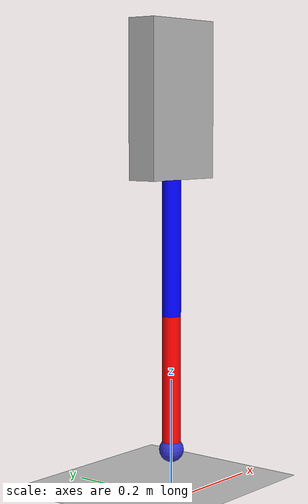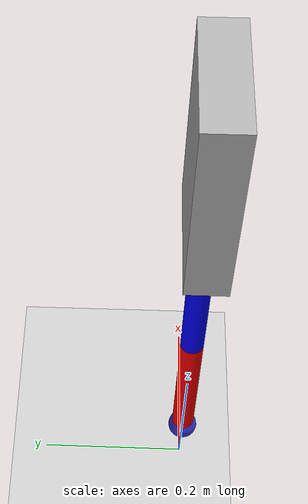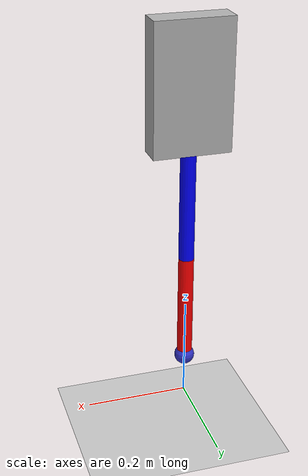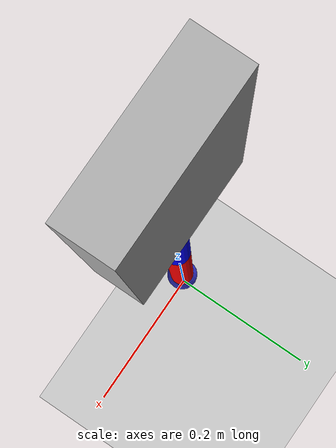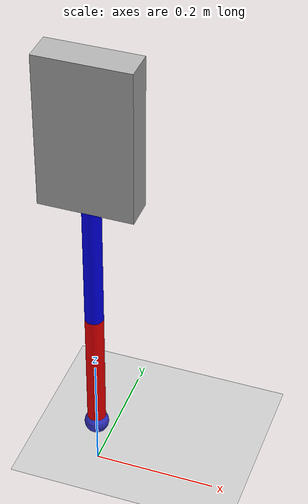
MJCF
<?xml version="1.0"?>
<mujoco model="biped_robot">
  <option timestep="0.001" gravity="0 0 -9.81" integrator="RK4" o_solref="-100000 -1000">
    <flag contact="enable" gravity="enable" override="enable"/>
  </option>

  <compiler angle="radian" coordinate="local" inertiafromgeom="false"/>

  <default>
    <geom friction="0.5 0.005 0.0001" condim="3"/>
    <joint damping="0.1" armature="0.01"/>
  </default>

  <asset>
    <texture type="skybox" builtin="gradient" rgb1="0.6 0.6 0.6" rgb2="0 0 0" width="512" height="512"/>
    <texture name="texplane" type="2d" builtin="checker" rgb1=".25 .25 .25" rgb2=".3 .3 .3" width="512" height="512" mark="cross" markrgb=".8 .8 .8"/>
    <material name="matplane" reflectance="0.3" texture="texplane" texrepeat="1 1" texuniform="true"/>
  </asset>

  <contact>
    <!-- Exclude all robot body collisions with each other -->
    <exclude body1="trunk" body2="upper_leg1"/>
    <exclude body1="trunk" body2="upper_leg2"/>
    <exclude body1="trunk" body2="lower_leg1"/>
    <exclude body1="trunk" body2="lower_leg2"/>
    <exclude body1="trunk" body2="foot1"/>
    <exclude body1="trunk" body2="foot2"/>

    <exclude body1="upper_leg1" body2="upper_leg2"/>
    <exclude body1="upper_leg1" body2="lower_leg1"/>
    <exclude body1="upper_leg1" body2="lower_leg2"/>
    <exclude body1="upper_leg1" body2="foot1"/>
    <exclude body1="upper_leg1" body2="foot2"/>

    <exclude body1="upper_leg2" body2="lower_leg1"/>
    <exclude body1="upper_leg2" body2="lower_leg2"/>
    <exclude body1="upper_leg2" body2="foot1"/>
    <exclude body1="upper_leg2" body2="foot2"/>

    <exclude body1="lower_leg1" body2="lower_leg2"/>
    <exclude body1="lower_leg1" body2="foot1"/>
    <exclude body1="lower_leg1" body2="foot2"/>

    <exclude body1="lower_leg2" body2="foot1"/>
    <exclude body1="lower_leg2" body2="foot2"/>

    <exclude body1="foot1" body2="foot2"/>
  </contact>

  <worldbody>
    <light directional="true" diffuse=".8 .8 .8" specular=".2 .2 .2" pos="0 0 5" dir="0 0 -1"/>

    <!-- Ground plane - Z is vertical -->
    <geom name="ground" type="plane" size="50 50 0.1" rgba="0.8 0.8 0.8 1" material="matplane"/>

    <!-- Main body/trunk -->
    <body name="trunk" pos="0 0 0.65">
      <!-- Planar joints for 2D motion: x translation, z (vertical) translation, rotation about y -->
      <joint name="root_x" type="slide" axis="1 0 0" limited="false"/>
      <joint name="root_z" type="slide" axis="0 0 1" limited="false"/>
      <joint name="root_theta" type="hinge" axis="0 1 0" limited="false"/>

      <!-- Trunk geometry: box with dimensions a=0.25m (height), b=0.15m (width/depth) -->
      <geom name="trunk_geom" type="box" size="0.075 0.025 0.125"
            rgba="0.7 0.7 0.7 1" mass="8.0"/>
      <inertial pos="0 0 0" mass="8.0" diaginertia="0.02167 0.02167 0.0075"/>

      <!-- Leg 1 (Left) -->
      <body name="upper_leg1" pos="0 0 -0.125">
        <!-- Hip joint q1: range -120° to 30° = -2.094 to 0.524 rad -->
        <joint name="q1" type="hinge" axis="0 1 0" range="-2.094 0.524"
               damping="0.1" armature="0.01"/>

        <geom name="upper_leg1_geom" type="capsule" fromto="0 0 0 0 0 -0.22" size="0.015"
              rgba="0 0 1 1"/>
        <inertial pos="0 0 -0.11" mass="0.25" diaginertia="0.00101667 0.00101667 0.00000625"/>

        <!-- Lower leg 1 -->
        <body name="lower_leg1" pos="0 0 -0.22">
          <!-- Knee joint q2: range 0° to 160° = 0 to 2.793 rad -->
          <joint name="q2" type="hinge" axis="0 1 0" range="0 2.793"
                 damping="0.1" armature="0.01"/>

          <geom name="lower_leg1_geom" type="capsule" fromto="0 0 0 0 0 -0.22" size="0.015"
                rgba="1 0 0 1"/>
          <inertial pos="0 0 -0.11" mass="0.25" diaginertia="0.00101667 0.00101667 0.00000625"/>

          <!-- Foot 1 with contact site -->
          <body name="foot1" pos="0 0 -0.22">
            <geom name="foot1_geom" type="sphere" size="0.02" rgba="0.2 0.2 0.8 1"
                  friction="0.9 0.005 0.0001"/>
            <inertial pos="0 0 0" mass="0.01" diaginertia="0.00001 0.00001 0.00001"/>
            <site name="foot1_site" pos="0 0 0" size="0.01" rgba="1 0 0 0.5"/>
          </body>
        </body>
      </body>

      <!-- Leg 2 (Right) -->
      <body name="upper_leg2" pos="0 0 -0.125">
        <!-- Hip joint q3 -->
        <joint name="q3" type="hinge" axis="0 1 0" range="-2.094 0.524"
               damping="0.1" armature="0.01"/>

        <geom name="upper_leg2_geom" type="capsule" fromto="0 0 0 0 0 -0.22" size="0.015"
              rgba="0 1 0 1"/>
        <inertial pos="0 0 -0.11" mass="0.25" diaginertia="0.00101667 0.00101667 0.00000625"/>

        <!-- Lower leg 2 -->
        <body name="lower_leg2" pos="0 0 -0.22">
          <!-- Knee joint q4 -->
          <joint name="q4" type="hinge" axis="0 1 0" range="0 2.793"
                 damping="0.1" armature="0.01"/>

          <geom name="lower_leg2_geom" type="capsule" fromto="0 0 0 0 0 -0.22" size="0.015"
                rgba="1 1 0 1"/>
          <inertial pos="0 0 -0.11" mass="0.25" diaginertia="0.00101667 0.00101667 0.00000625"/>

          <!-- Foot 2 with contact site -->
          <body name="foot2" pos="0 0 -0.22">
            <geom name="foot2_geom" type="sphere" size="0.02" rgba="0.8 0.8 0.2 1"
                  friction="0.9 0.005 0.0001"/>
            <inertial pos="0 0 0" mass="0.01" diaginertia="0.00001 0.00001 0.00001"/>
            <site name="foot2_site" pos="0 0 0" size="0.01" rgba="0 1 0 0.5"/>
          </body>
        </body>
      </body>
    </body>
  </worldbody>

  <actuator>
    <!-- Torque actuators with limits -->
    <motor name="tau_q1" joint="q1" gear="1" ctrllimited="true" ctrlrange="-30 30"/>
    <motor name="tau_q2" joint="q2" gear="1" ctrllimited="true" ctrlrange="-60 60"/>
    <motor name="tau_q3" joint="q3" gear="1" ctrllimited="true" ctrlrange="-30 30"/>
    <motor name="tau_q4" joint="q4" gear="1" ctrllimited="true" ctrlrange="-60 60"/>
  </actuator>

  <sensor>
    <!-- Joint positions -->
    <jointpos name="q1_pos" joint="q1"/>
    <jointpos name="q2_pos" joint="q2"/>
    <jointpos name="q3_pos" joint="q3"/>
    <jointpos name="q4_pos" joint="q4"/>

    <!-- Joint velocities -->
    <jointvel name="q1_vel" joint="q1"/>
    <jointvel name="q2_vel" joint="q2"/>
    <jointvel name="q3_vel" joint="q3"/>
    <jointvel name="q4_vel" joint="q4"/>

    <!-- Root position and orientation -->
    <jointpos name="root_x_pos" joint="root_x"/>
    <jointpos name="root_z_pos" joint="root_z"/>
    <jointpos name="root_theta_pos" joint="root_theta"/>

    <!-- Root velocities -->
    <jointvel name="root_x_vel" joint="root_x"/>
    <jointvel name="root_z_vel" joint="root_z"/>
    <jointvel name="root_theta_vel" joint="root_theta"/>

    <!-- Contact forces -->
    <touch name="foot1_contact" site="foot1_site"/>
    <touch name="foot2_contact" site="foot2_site"/>

  </sensor>
</mujoco>
